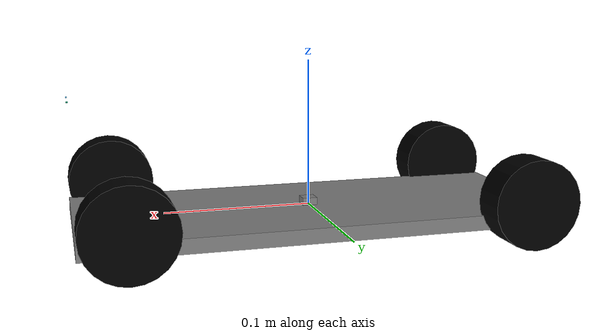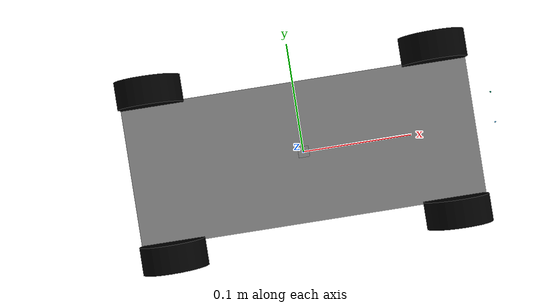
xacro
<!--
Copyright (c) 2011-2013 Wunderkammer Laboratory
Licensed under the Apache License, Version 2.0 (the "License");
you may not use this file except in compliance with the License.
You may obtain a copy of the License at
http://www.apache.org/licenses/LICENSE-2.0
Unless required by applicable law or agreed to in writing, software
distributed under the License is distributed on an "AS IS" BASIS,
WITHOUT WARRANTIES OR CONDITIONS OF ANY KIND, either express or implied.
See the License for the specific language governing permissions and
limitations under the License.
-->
<?xml version="1.0"?>

<robot name="rc_car" xmlns:xacro="http://www.ros.org/wiki/xacro">
  <!-- Degree-to-radian conversions -->
  <xacro:property name="degrees_15" value="0.261799"/>
  <xacro:property name="degrees_21" value="0.366519"/>
  <xacro:property name="degrees_25" value="0.436332"/>
  <xacro:property name="degrees_45" value="0.785398163"/>
  <xacro:property name="degrees_90" value="1.57079633"/>

  <!-- chassis_length is measured along the x axis, chassis_width
       along the y axis, and chassis_height along the z axis. -->
  <xacro:property name="chassis_length" value="0.32"/>
  <xacro:property name="chassis_width" value="0.13"/>
  <xacro:property name="chassis_height" value="0.01"/>
  <xacro:property name="chassis_mass" value="8.0"/>

  <xacro:property name="hub_dia" value="0.05"/>
  <xacro:property name="tire_dia" value="0.06"/>
  <xacro:property name="tire_width" value="0.025"/>
  <xacro:property name="hex_hub_depth" value="0.012"/>
  <xacro:property name="wheel_mass" value="0.20"/>

  <xacro:property name="wheelbase" value="0.26"/>
  <xacro:property name="hex_hub_dist" value="0.17"/>
  <xacro:property name="axle_length" value="0.01"/>
  <xacro:property name="wheel_travel" value="0.015"/>
  <xacro:property name="shock_z_offset" value="0.0655"/>

  <xacro:property name="axle_eff_limit" value="2.888225625"/>
  <xacro:property name="axle_vel_limit" value="550.203076923"/>

  <!-- These constants are used to simulate a Traxxas 2056 servo operated at
       6 V. servo_stall_torque is measured in N m. servo_no_load_speed is
       measured in rad/s. -->
  <xacro:property name="servo_stall_torque" value="0.874854"/>
  <xacro:property name="servo_no_load_speed" value="11.63553"/>

  <!-- ctrl_period is gazebo_ros_control's control period. Unit: hertz. -->
  <xacro:property name="ctrl_period" value="0.01"/>

  <material name="chassis_mat">
    <color rgba="0.5 0.5 0.5 1"/>
  </material>
  <material name="tire_mat">
    <color rgba="0 0 0 1"/>
  </material>

  <!-- Null inertial element. This is needed to make the model work with
       Gazebo. -->
  <xacro:macro name="null_inertial">
    <inertial>
      <mass value="0.001"/>
      <inertia ixx="0.001" ixy="0" ixz="0" iyy="0.001" iyz="0" izz="0.001"/>
    </inertial>
  </xacro:macro>

  <!-- Inertia of a solid cuboid. Width is measured along the x axis, depth
       along the y axis, and height along the z axis. -->
  <xacro:macro name="solid_cuboid_inertial"
               params="width depth height mass *origin">
    <inertial>
      <xacro:insert_block name="origin"/>
      <mass value="${mass}"/>
      <inertia ixx="${mass * (depth * depth + height * height) / 12}"
               ixy="0" ixz="0"
               iyy="${mass * (width * width + height * height) / 12}"
               iyz="0"
               izz="${mass * (width * width + depth * depth) / 12}"/>
    </inertial>
  </xacro:macro>

  <xacro:macro name="thick_walled_tube_inertial"
               params="inner_rad outer_rad height mass">
    <inertial>
      <mass value="${mass}"/>
      <inertia ixx="${(1 / 12) * mass * (3 * (inner_rad * inner_rad +
                    outer_rad * outer_rad) + height * height)}"
               ixy="0" ixz="0"
               iyy="${(1 / 12) * mass * (3 * (inner_rad * inner_rad +
                    outer_rad * outer_rad) + height * height)}"
               iyz="0"
               izz="${mass * (inner_rad * inner_rad +
                    outer_rad * outer_rad) / 2}"/>
    </inertial>
  </xacro:macro>

  <!-- Shock absorber -->
  <xacro:macro name="shock"
               params="lr_prefix fr_prefix lr_reflect fr_reflect child">
    <joint name="chassis_to_${lr_prefix}_${fr_prefix}_wheel" type="fixed">
      <parent link="chassis"/>
      <child link="${child}"/>
      <origin xyz="${fr_reflect * wheelbase / 2}
                   ${lr_reflect * ((hex_hub_dist / 2) - axle_length)}
                   0.01"/>
      <axis xyz="0 0 -1"/>
      <limit lower="0" upper="0" effort="0" velocity="1000"/>
    </joint>
  </xacro:macro>

  <!-- The "wheel" macro defines an axle carrier, axle, and wheel. -->
  <xacro:macro name="wheel" params="lr_prefix fr_prefix lr_reflect mu1 mu2">
    <link name="${lr_prefix}_${fr_prefix}_axle_carrier">
      <xacro:null_inertial/>
    </link>

    <!-- The left and right axles have the same axis so that identical
         rotation values cause the wheels to rotate in the same direction. -->
    <joint name="${lr_prefix}_${fr_prefix}_axle" type="continuous">
      <parent link="${lr_prefix}_${fr_prefix}_axle_carrier"/>
      <child link="${lr_prefix}_${fr_prefix}_wheel"/>
      <origin rpy="${degrees_90} 0 0"/>
      <axis xyz="0 0 -1"/>
      <limit effort="${axle_eff_limit}" velocity="${axle_vel_limit}"/>
    </joint>
    <transmission name="${lr_prefix}_${fr_prefix}_axle_trans">
      <type>transmission_interface/SimpleTransmission</type>
      <joint name="${lr_prefix}_${fr_prefix}_axle">
        <hardwareInterface>hardware_interface/EffortJointInterface</hardwareInterface>
      </joint>
      <actuator name="${lr_prefix}_${fr_prefix}_axle_act">
        <hardwareInterface>hardware_interface/EffortJointInterface</hardwareInterface>
        <mechanicalReduction>1</mechanicalReduction>
      </actuator>
    </transmission>

    <link name="${lr_prefix}_${fr_prefix}_wheel">
        <visual>
          <origin xyz="0 0 0"/>
          <geometry>
            <cylinder radius="${tire_dia / 2}" length="${tire_width}"/>
          </geometry>
          <material name="tire_mat"/>
        </visual>

      <collision>
        <origin xyz="0 0 0"/>
        <geometry>
          <cylinder radius="${tire_dia / 2}" length="${tire_width}"/>
        </geometry>
      </collision>

      <xacro:thick_walled_tube_inertial
          inner_rad="${hub_dia / 2}" outer_rad="${tire_dia / 2}"
          height="${tire_width}" mass="${wheel_mass}"/>
    </link>

    <gazebo reference="${lr_prefix}_${fr_prefix}_wheel">
       <mu1 value="${mu1}"/>
       <mu2 value="${mu2}"/>
       <kp value="10000000.0" />
       <kd value="1.0" />
      <material>Gazebo/Black</material>
    </gazebo>
  </xacro:macro>

  <!-- Front wheel -->
  <xacro:macro name="front_wheel"
               params="lr_prefix fr_prefix lr_reflect fr_reflect">
    <xacro:shock lr_prefix="${lr_prefix}" fr_prefix="${fr_prefix}"
                 lr_reflect="${lr_reflect}" fr_reflect="${fr_reflect}"
                 child="${lr_prefix}_steering_link"/>
    <link name="${lr_prefix}_steering_link">
      <xacro:null_inertial/>
    </link>
    <joint name="${lr_prefix}_steering_joint" type="revolute">
      <parent link="${lr_prefix}_steering_link"/>
      <child link="${lr_prefix}_${fr_prefix}_axle_carrier"/>
      <axis xyz="0 0 1"/>
      <limit lower="${-degrees_45}" upper="${degrees_45}"
             effort="${servo_stall_torque}" velocity="${servo_no_load_speed}"/>
    </joint>
    <transmission name="${lr_prefix}_steering_trans">
      <type>transmission_interface/SimpleTransmission</type>
      <joint name="${lr_prefix}_steering_joint">
        <hardwareInterface>hardware_interface/EffortJointInterface</hardwareInterface>
      </joint>
      <actuator name="${lr_prefix}_steering_act">
        <hardwareInterface>hardware_interface/EffortJointInterface</hardwareInterface>
        <mechanicalReduction>1</mechanicalReduction>
      </actuator>
    </transmission>

    <xacro:wheel lr_prefix="${lr_prefix}" fr_prefix="${fr_prefix}"
                 lr_reflect="${lr_reflect}" mu1="0.45" mu2="0.45"/>
  </xacro:macro>

  <!-- Rear wheel -->
  <xacro:macro name="rear_wheel"
               params="lr_prefix fr_prefix lr_reflect fr_reflect">
    <xacro:shock lr_prefix="${lr_prefix}" fr_prefix="${fr_prefix}"
                 lr_reflect="${lr_reflect}" fr_reflect="${fr_reflect}"
                 child="${lr_prefix}_${fr_prefix}_axle_carrier"/>
    <xacro:wheel lr_prefix="${lr_prefix}" fr_prefix="${fr_prefix}"
                 lr_reflect="${lr_reflect}" mu1="0.45" mu2="0.45"/>
  </xacro:macro>

  <!-- base_link must have geometry so that its axes can be displayed in
       rviz. -->
  <link name="base_link">
    <visual>
      <geometry>
        <box size="0.01 0.01 0.01"/>
      </geometry>
      <material name="chassis_mat"/>
    </visual>
  </link>
  <gazebo reference="base_link">
    <material>Gazebo/Red</material>
  </gazebo>

  <joint name="hedge_joint" type="fixed">
		<axis xyz="1 0 0"/>
		<origin xyz="0.16 0.0 0.08"/>
		<parent link="base_link"/>
		<child link="hedge_link"/>
  </joint>
	<link name="hedge_link">
	  <inertial>
	    <mass value="0.001"/>
	    <origin rpy="0 0 0" xyz="0 0 0"/>
	    <inertia ixx="0.0001" ixy="0" ixz="0" iyy="0.000001" iyz="0" izz="0.0001"/>
	  </inertial>
	  <visual>
	    <origin rpy="0 0 0" xyz="0 0 0"/>
	    <geometry>
	      <box size="0.001 0.001 0.001"/>
	    </geometry>
	  </visual>
	  <collision>
	    <origin rpy="0 0 0" xyz="0 0 0"/>
	    <geometry>
	      <box size=".001 .001 .001"/>
	    </geometry>
	  </collision>
	</link>

  <joint name="imu_joint" type="fixed">
		<axis xyz="1 0 0"/>
		<origin xyz="0.16 0.025 0.08" rpy="0 0 0"/>
		<parent link="base_link"/>
		<child link="imu_link"/>
  </joint>
	<link name="imu_link">
	  <inertial>
	    <mass value="0.001"/>
	    <origin rpy="0 0 0" xyz="0 0 0"/>
	    <inertia ixx="0.0001" ixy="0" ixz="0" iyy="0.000001" iyz="0" izz="0.0001"/>
	  </inertial>
	  <visual>
	    <origin rpy="0 0 0" xyz="0 0 0"/>
	    <geometry>
	      <box size="0.001 0.001 0.001"/>
	    </geometry>
	  </visual>
	  <collision>
	    <origin rpy="0 0 0" xyz="0 0 0"/>
	    <geometry>
	      <box size=".001 .001 .001"/>
	    </geometry>
	  </collision>
	</link>

  <!-- Chassis -->
  <link name="chassis">
    <visual>
      <origin xyz="0 0 ${-chassis_height / 2}"/>
      <geometry>
        <box size="${chassis_length} ${chassis_width} ${chassis_height}"/>
      </geometry>
      <material name="chassis_mat"/>
    </visual>

    <collision>
      <origin xyz="0 0 ${-chassis_height / 2}"/>
      <geometry>
        <box size="${chassis_length} ${chassis_width} ${chassis_height}"/>
      </geometry>
    </collision>

    <xacro:solid_cuboid_inertial
        width="${chassis_length}" depth="${chassis_width}"
        height="${chassis_height}" mass="${chassis_mass}">
      <origin xyz="0 0 ${-chassis_height / 2}"/>
    </xacro:solid_cuboid_inertial>
  </link>
  <gazebo reference="chassis">
    <material>Gazebo/Red</material>
  </gazebo>

  <joint name="base_link_to_chasis" type="fixed">
    <parent link="base_link"/>
    <child link="chassis"/>
  </joint>

  <!-- Wheels -->
  <xacro:front_wheel lr_prefix="left" fr_prefix="front"
                     lr_reflect="1" fr_reflect="1"/>
  <xacro:front_wheel lr_prefix="right" fr_prefix="front"
                     lr_reflect="-1" fr_reflect="1"/>
  <xacro:rear_wheel lr_prefix="left" fr_prefix="rear"
                    lr_reflect="1" fr_reflect="-1"/>
  <xacro:rear_wheel lr_prefix="right" fr_prefix="rear"
                    lr_reflect="-1" fr_reflect="-1"/>

  <gazebo>
    <plugin name="gazebo_ros_control" filename="libgazebo_ros_control.so">
      <robotNamespace>/drift_car</robotNamespace>
      <robotSimType>gazebo_ros_control/DefaultRobotHWSim</robotSimType>
      <legacyModeNS>true</legacyModeNS>
    </plugin>

    <!-- IMU data for simulating EKF on actual drift car -->
    <plugin name="imu_plugin" filename="libgazebo_ros_imu.so">
        <alwaysOn>true</alwaysOn>
        <bodyName>imu_link</bodyName>
        <topicName>/drift_car/imu_data</topicName>
        <serviceName>/drift_car/imu_service</serviceName>
        <gaussianNoise>0.01</gaussianNoise>
        <updateRate>60.0</updateRate>
    </plugin>

    <!-- Actual Odometry data for RViz -->
    <plugin name="p3d_base_controller" filename="libgazebo_ros_p3d.so">
      <alwaysOn>true</alwaysOn>
      <updateRate>400.0</updateRate>
      <bodyName>base_link</bodyName>
      <topicName>/drift_car/odom</topicName>
      <gaussianNoise>0.01</gaussianNoise>
      <frameName>world</frameName>
      <xyzOffsets>0 0 0</xyzOffsets>
      <rpyOffsets>0 0 0</rpyOffsets>
    </plugin>
  </gazebo>
</robot>
